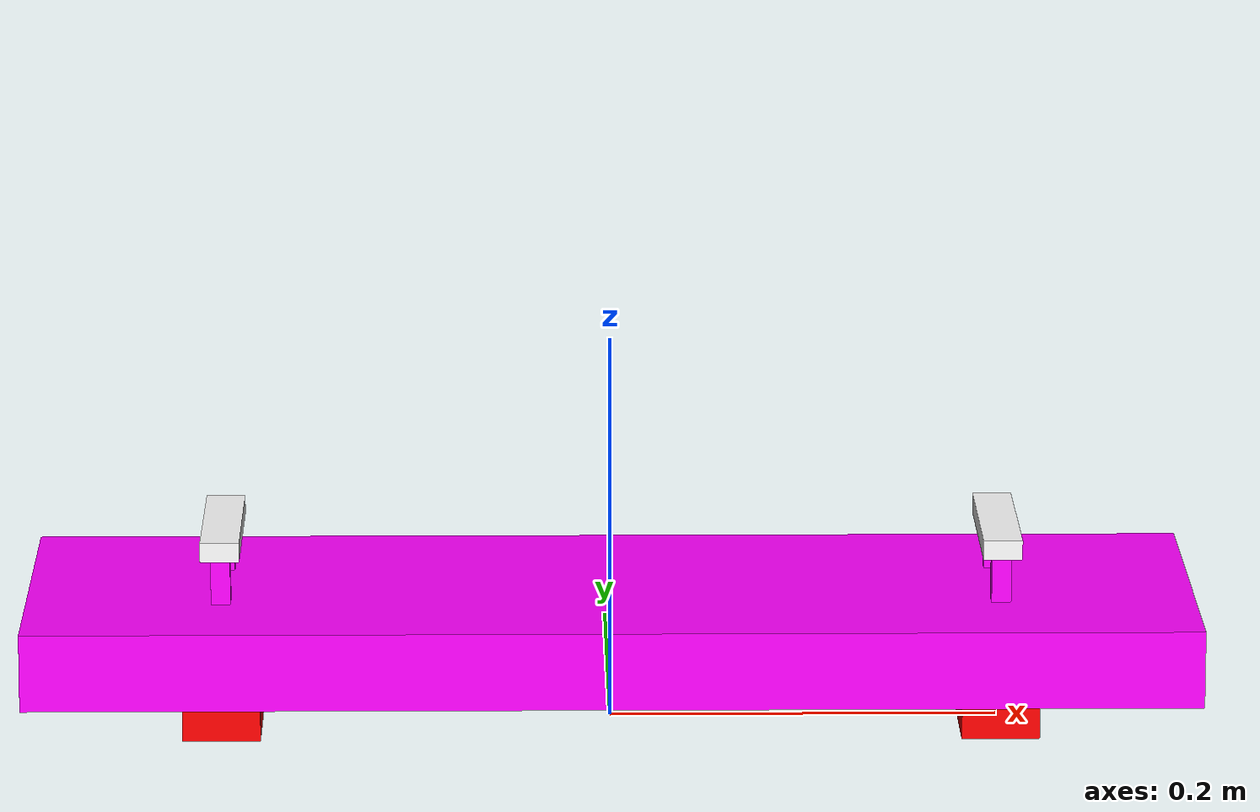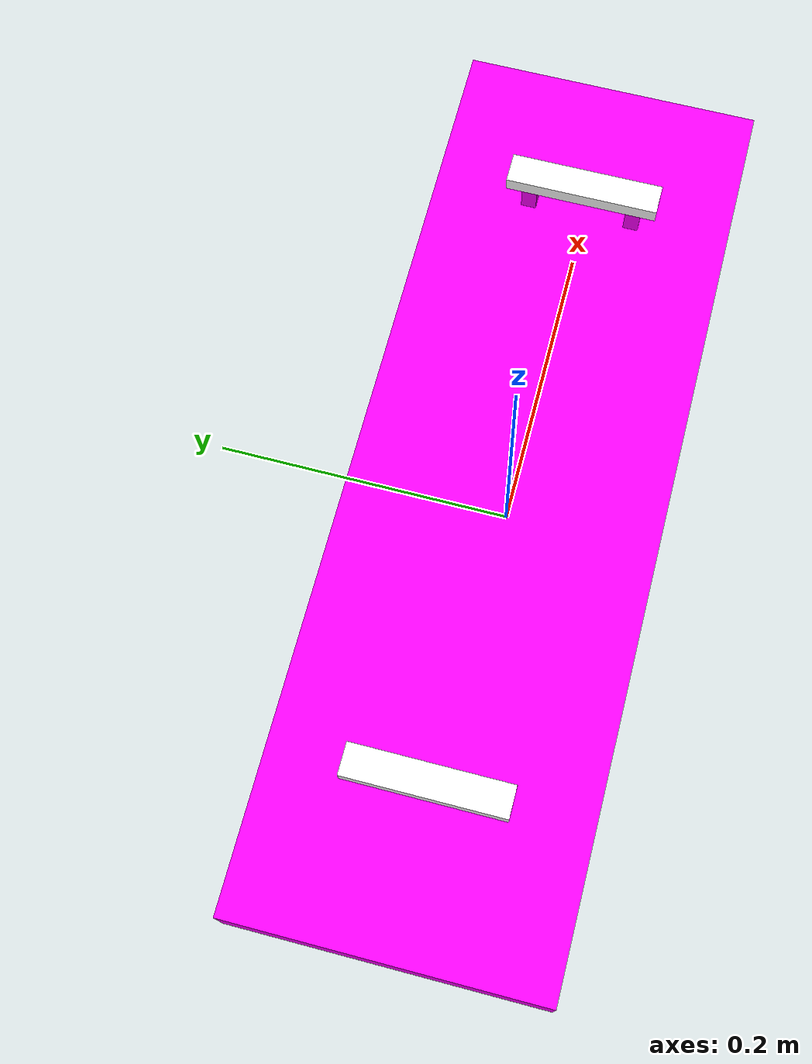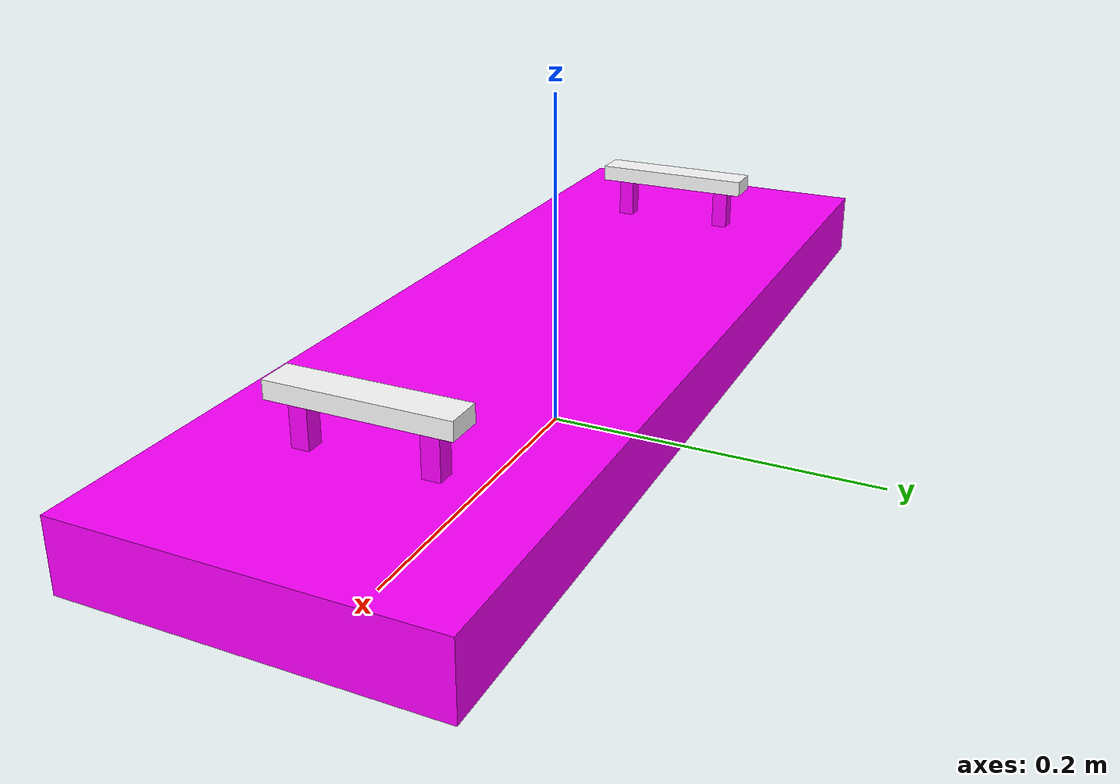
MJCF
<mujoco model="picked_board">
    <worldbody>
        <body name="picked_board" pos="0.0 0.0 0.0" quat="1 0 0 0">
            <geom name="picked_handle1" pos="-0.2 0 0.1" size="0.01 0.05 0.005" rgba="1 1 1 1.0" type="box" mass="0.001"/>
            <geom name="picked_handle2" pos="0.2 0 0.1" size="0.01 0.05 0.005" rgba="1 1 1 1.0" type="box" mass="0.001"/>
            <geom pos="-0.2 0.035 0.075" size="0.005 0.005 0.02" rgba="1 0 1 1.0" type="box" mass="0.001"/>
            <geom pos="-0.2 -0.035 0.075" size="0.005 0.005 0.02" rgba="1 0 1 1.0" type="box" mass="0.001"/>
            <geom pos="0.2 0.035 0.075" size="0.005 0.005 0.02" rgba="1 0 1 1.0" type="box" mass="0.001"/>
            <geom pos="0.2 -0.035 0.075" size="0.005 0.005 0.02" rgba="1 0 1 1.0" type="box" mass="0.001"/>

            <geom pos="-0.2 0 0.025" size="0.02 0.05 0.025" rgba="1 0 0 1.0" type="box" mass="0.001"/>
            <geom pos="0.2 0 0.025" size="0.02 0.05 0.025" rgba="1 0 0 1.0" type="box" mass="0.001"/>
            <geom name="picked_board" pos="0 0 0.05" size="0.3 0.1 0.02" rgba="1 0 1.0 1.0" type="box" mass="0.1"/>
            <joint name="picked_board_joint" type="free"/>
        </body>
    </worldbody>
</mujoco>
